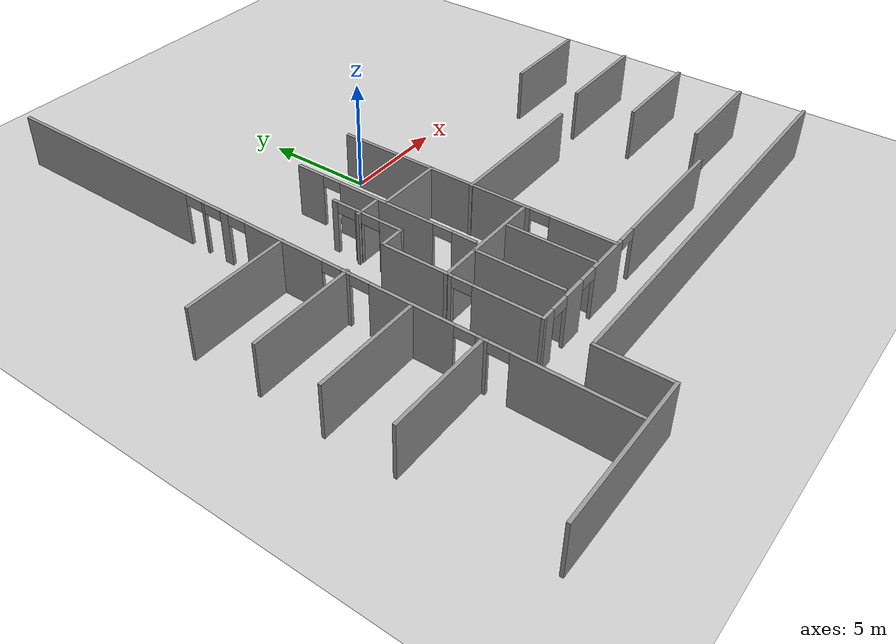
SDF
<sdf version="1.7">
 <world name="default">
  <model name="ground_plane">
   <static>1</static>
   <link name="link">
    <collision name="collision">
     <geometry><plane><normal>0 0 1</normal><size>100 100</size></plane></geometry>
     <surface><friction><ode><mu>100</mu><mu2>50</mu2></ode></friction></surface>
    </collision>
    <visual name="visual">
     <cast_shadows>0</cast_shadows>
     <geometry><plane><normal>0 0 1</normal><size>100 100</size></plane></geometry>
     <material>
      <script><uri>file://media/materials/scripts/gazebo.material</uri><name>Gazebo/Grey</name></script>
     </material>
    </visual>
   </link>
  </model>
  <model name="GGB_1_floor">
   <pose>0.630572 -15.6046 0 0 -0 0</pose>
   <link name="Wall_1">
    <collision name="Wall_1_Collision">
     <geometry><box><size>7 0.15 2.5</size></box></geometry>
     <pose>0 0 1.25 0 -0 0</pose>
    </collision>
    <visual name="Wall_1_Visual">
     <pose>0 0 1.25 0 -0 0</pose>
     <geometry><box><size>7 0.15 2.5</size></box></geometry>
     <material>
      <script><uri>file://media/materials/scripts/gazebo.material</uri><name>Gazebo/Grey</name></script>
      <ambient>1 1 1 1</ambient>
     </material>
     <meta><layer>0</layer></meta>
    </visual>
    <pose>-9.62976 -2.2505 0 0 -0 0</pose>
   </link>
   <link name="Wall_10">
    <pose>-8.20513 13.193 0 0 -0 -1.5708</pose>
    <visual name="Wall_10_Visual_0">
     <pose>-10.2751 0 1.25 0 -0 0</pose>
     <geometry><box><size>10.1998 0.15 2.5</size></box></geometry>
     <material>
      <script><uri>file://media/materials/scripts/gazebo.material</uri><name>Gazebo/Grey</name></script>
      <ambient>1 1 1 1</ambient>
     </material>
     <meta><layer>0</layer></meta>
    </visual>
    <collision name="Wall_10_Collision_0">
     <geometry><box><size>10.1998 0.15 2.5</size></box></geometry>
     <pose>-10.2751 0 1.25 0 -0 0</pose>
    </collision>
    <visual name="Wall_10_Visual_1">
     <pose>-4.20758 0 1.25 0 -0 0</pose>
     <geometry><box><size>0.135255 0.15 2.5</size></box></geometry>
     <material>
      <script><uri>file://media/materials/scripts/gazebo.material</uri><name>Gazebo/Grey</name></script>
      <ambient>1 1 1 1</ambient>
     </material>
     <meta><layer>0</layer></meta>
    </visual>
    <collision name="Wall_10_Collision_1">
     <geometry><box><size>0.135255 0.15 2.5</size></box></geometry>
     <pose>-4.20758 0 1.25 0 -0 0</pose>
    </collision>
    <visual name="Wall_10_Visual_2">
     <pose>-3.02117 0 1.25 0 -0 0</pose>
     <geometry><box><size>0.437563 0.15 2.5</size></box></geometry>
     <material>
      <script><uri>file://media/materials/scripts/gazebo.material</uri><name>Gazebo/Grey</name></script>
      <ambient>1 1 1 1</ambient>
     </material>
     <meta><layer>0</layer></meta>
    </visual>
    <collision name="Wall_10_Collision_2">
     <geometry><box><size>0.437563 0.15 2.5</size></box></geometry>
     <pose>-3.02117 0 1.25 0 -0 0</pose>
    </collision>
    <visual name="Wall_10_Visual_3">
     <pose>0.081968 0 1.25 0 -0 0</pose>
     <geometry><box><size>3.96873 0.15 2.5</size></box></geometry>
     <material>
      <script><uri>file://media/materials/scripts/gazebo.material</uri><name>Gazebo/Grey</name></script>
      <ambient>1 1 1 1</ambient>
     </material>
     <meta><layer>0</layer></meta>
    </visual>
    <collision name="Wall_10_Collision_3">
     <geometry><box><size>3.96873 0.15 2.5</size></box></geometry>
     <pose>0.081968 0 1.25 0 -0 0</pose>
    </collision>
    <visual name="Wall_10_Visual_4">
     <pose>3.18511 0 1.25 0 -0 0</pose>
     <geometry><box><size>0.437563 0.15 2.5</size></box></geometry>
     <material>
      <script><uri>file://media/materials/scripts/gazebo.material</uri><name>Gazebo/Grey</name></script>
      <ambient>1 1 1 1</ambient>
     </material>
     <meta><layer>0</layer></meta>
    </visual>
    <collision name="Wall_10_Collision_4">
     <geometry><box><size>0.437563 0.15 2.5</size></box></geometry>
     <pose>3.18511 0 1.25 0 -0 0</pose>
    </collision>
    <visual name="Wall_10_Visual_5">
     <pose>6.18125 0 1.25 0 -0 0</pose>
     <geometry><box><size>3.75472 0.15 2.5</size></box></geometry>
     <material>
      <script><uri>file://media/materials/scripts/gazebo.material</uri><name>Gazebo/Grey</name></script>
      <ambient>1 1 1 1</ambient>
     </material>
     <meta><layer>0</layer></meta>
    </visual>
    <collision name="Wall_10_Collision_5">
     <geometry><box><size>3.75472 0.15 2.5</size></box></geometry>
     <pose>6.18125 0 1.25 0 -0 0</pose>
    </collision>
    <visual name="Wall_10_Visual_6">
     <pose>9.20415 0 1.25 0 -0 0</pose>
     <geometry><box><size>0.491064 0.15 2.5</size></box></geometry>
     <material>
      <script><uri>file://media/materials/scripts/gazebo.material</uri><name>Gazebo/Grey</name></script>
      <ambient>1 1 1 1</ambient>
     </material>
     <meta><layer>0</layer></meta>
    </visual>
    <collision name="Wall_10_Collision_6">
     <geometry><box><size>0.491064 0.15 2.5</size></box></geometry>
     <pose>9.20415 0 1.25 0 -0 0</pose>
    </collision>
    <visual name="Wall_10_Visual_7">
     <pose>12.8623 0 1.25 0 -0 0</pose>
     <geometry><box><size>5.02532 0.15 2.5</size></box></geometry>
     <material>
      <script><uri>file://media/materials/scripts/gazebo.material</uri><name>Gazebo/Grey</name></script>
      <ambient>1 1 1 1</ambient>
     </material>
     <meta><layer>0</layer></meta>
    </visual>
    <collision name="Wall_10_Collision_7">
     <geometry><box><size>5.02532 0.15 2.5</size></box></geometry>
     <pose>12.8623 0 1.25 0 -0 0</pose>
    </collision>
    <visual name="Wall_10_Visual_8">
     <pose>-4.72521 0 2.25 0 -0 0</pose>
     <geometry><box><size>0.9 0.15 0.5</size></box></geometry>
     <material>
      <script><uri>file://media/materials/scripts/gazebo.material</uri><name>Gazebo/Grey</name></script>
      <ambient>1 1 1 1</ambient>
     </material>
     <meta><layer>0</layer></meta>
    </visual>
    <collision name="Wall_10_Collision_8">
     <geometry><box><size>0.9 0.15 0.5</size></box></geometry>
     <pose>-4.72521 0 2.25 0 -0 0</pose>
    </collision>
    <visual name="Wall_10_Visual_9">
     <pose>-3.68996 0 2.25 0 -0 0</pose>
     <geometry><box><size>0.9 0.15 0.5</size></box></geometry>
     <material>
      <script><uri>file://media/materials/scripts/gazebo.material</uri><name>Gazebo/Grey</name></script>
      <ambient>1 1 1 1</ambient>
     </material>
     <meta><layer>0</layer></meta>
    </visual>
    <collision name="Wall_10_Collision_9">
     <geometry><box><size>0.9 0.15 0.5</size></box></geometry>
     <pose>-3.68996 0 2.25 0 -0 0</pose>
    </collision>
    <visual name="Wall_10_Visual_10">
     <pose>-2.35239 0 2.25 0 -0 0</pose>
     <geometry><box><size>0.9 0.15 0.5</size></box></geometry>
     <material>
      <script><uri>file://media/materials/scripts/gazebo.material</uri><name>Gazebo/Grey</name></script>
      <ambient>1 1 1 1</ambient>
     </material>
     <meta><layer>0</layer></meta>
    </visual>
    <collision name="Wall_10_Collision_10">
     <geometry><box><size>0.9 0.15 0.5</size></box></geometry>
     <pose>-2.35239 0 2.25 0 -0 0</pose>
    </collision>
    <visual name="Wall_10_Visual_11">
     <pose>2.51633 0 2.25 0 -0 0</pose>
     <geometry><box><size>0.9 0.15 0.5</size></box></geometry>
     <material>
      <script><uri>file://media/materials/scripts/gazebo.material</uri><name>Gazebo/Grey</name></script>
      <ambient>1 1 1 1</ambient>
     </material>
     <meta><layer>0</layer></meta>
    </visual>
    <collision name="Wall_10_Collision_11">
     <geometry><box><size>0.9 0.15 0.5</size></box></geometry>
     <pose>2.51633 0 2.25 0 -0 0</pose>
    </collision>
    <visual name="Wall_10_Visual_12">
     <pose>3.85389 0 2.25 0 -0 0</pose>
     <geometry><box><size>0.9 0.15 0.5</size></box></geometry>
     <material>
      <script><uri>file://media/materials/scripts/gazebo.material</uri><name>Gazebo/Grey</name></script>
      <ambient>1 1 1 1</ambient>
     </material>
     <meta><layer>0</layer></meta>
    </visual>
    <collision name="Wall_10_Collision_12">
     <geometry><box><size>0.9 0.15 0.5</size></box></geometry>
     <pose>3.85389 0 2.25 0 -0 0</pose>
    </collision>
    <visual name="Wall_10_Visual_13">
     <pose>8.50861 0 2.25 0 -0 0</pose>
     <geometry><box><size>0.9 0.15 0.5</size></box></geometry>
     <material>
      <script><uri>file://media/materials/scripts/gazebo.material</uri><name>Gazebo/Grey</name></script>
      <ambient>1 1 1 1</ambient>
     </material>
     <meta><layer>0</layer></meta>
    </visual>
    <collision name="Wall_10_Collision_13">
     <geometry><box><size>0.9 0.15 0.5</size></box></geometry>
     <pose>8.50861 0 2.25 0 -0 0</pose>
    </collision>
    <visual name="Wall_10_Visual_14">
     <pose>9.89968 0 2.25 0 -0 0</pose>
     <geometry><box><size>0.9 0.15 0.5</size></box></geometry>
     <material>
      <script><uri>file://media/materials/scripts/gazebo.material</uri><name>Gazebo/Grey</name></script>
      <ambient>1 1 1 1</ambient>
     </material>
     <meta><layer>0</layer></meta>
    </visual>
    <collision name="Wall_10_Collision_14">
     <geometry><box><size>0.9 0.15 0.5</size></box></geometry>
     <pose>9.89968 0 2.25 0 -0 0</pose>
    </collision>
   </link>
   <link name="Wall_19">
    <pose>0.236183 2.85993 0 0 -0 3.14159</pose>
    <visual name="Wall_19_Visual_0">
     <pose>-3.29415 0 1.25 0 -0 0</pose>
     <geometry><box><size>6.16171 0.15 2.5</size></box></geometry>
     <material>
      <script><uri>file://media/materials/scripts/gazebo.material</uri><name>Gazebo/Grey</name></script>
      <ambient>1 1 1 1</ambient>
     </material>
     <meta><layer>0</layer></meta>
    </visual>
    <collision name="Wall_19_Collision_0">
     <geometry><box><size>6.16171 0.15 2.5</size></box></geometry>
     <pose>-3.29415 0 1.25 0 -0 0</pose>
    </collision>
    <visual name="Wall_19_Visual_1">
     <pose>1.73477 0 1.25 0 -0 0</pose>
     <geometry><box><size>2.09614 0.15 2.5</size></box></geometry>
     <material>
      <script><uri>file://media/materials/scripts/gazebo.material</uri><name>Gazebo/Grey</name></script>
      <ambient>1 1 1 1</ambient>
     </material>
     <meta><layer>0</layer></meta>
    </visual>
    <collision name="Wall_19_Collision_1">
     <geometry><box><size>2.09614 0.15 2.5</size></box></geometry>
     <pose>1.73477 0 1.25 0 -0 0</pose>
    </collision>
    <visual name="Wall_19_Visual_2">
     <pose>4.24939 0 1.25 0 -0 0</pose>
     <geometry><box><size>1.13309 0.15 2.5</size></box></geometry>
     <material>
      <script><uri>file://media/materials/scripts/gazebo.material</uri><name>Gazebo/Grey</name></script>
      <ambient>1 1 1 1</ambient>
     </material>
     <meta><layer>0</layer></meta>
    </visual>
    <collision name="Wall_19_Collision_2">
     <geometry><box><size>1.13309 0.15 2.5</size></box></geometry>
     <pose>4.24939 0 1.25 0 -0 0</pose>
    </collision>
    <visual name="Wall_19_Visual_3">
     <pose>6.04547 0 1.25 0 -0 0</pose>
     <geometry><box><size>0.65906 0.15 2.5</size></box></geometry>
     <material>
      <script><uri>file://media/materials/scripts/gazebo.material</uri><name>Gazebo/Grey</name></script>
      <ambient>1 1 1 1</ambient>
     </material>
     <meta><layer>0</layer></meta>
    </visual>
    <collision name="Wall_19_Collision_3">
     <geometry><box><size>0.65906 0.15 2.5</size></box></geometry>
     <pose>6.04547 0 1.25 0 -0 0</pose>
    </collision>
    <visual name="Wall_19_Visual_4">
     <pose>0.236705 0 2.25 0 -0 0</pose>
     <geometry><box><size>0.9 0.15 0.5</size></box></geometry>
     <material>
      <script><uri>file://media/materials/scripts/gazebo.material</uri><name>Gazebo/Grey</name></script>
      <ambient>1 1 1 1</ambient>
     </material>
     <meta><layer>0</layer></meta>
    </visual>
    <collision name="Wall_19_Collision_4">
     <geometry><box><size>0.9 0.15 0.5</size></box></geometry>
     <pose>0.236705 0 2.25 0 -0 0</pose>
    </collision>
    <visual name="Wall_19_Visual_5">
     <pose>3.23284 0 2.25 0 -0 0</pose>
     <geometry><box><size>0.9 0.15 0.5</size></box></geometry>
     <material>
      <script><uri>file://media/materials/scripts/gazebo.material</uri><name>Gazebo/Grey</name></script>
      <ambient>1 1 1 1</ambient>
     </material>
     <meta><layer>0</layer></meta>
    </visual>
    <collision name="Wall_19_Collision_5">
     <geometry><box><size>0.9 0.15 0.5</size></box></geometry>
     <pose>3.23284 0 2.25 0 -0 0</pose>
    </collision>
    <visual name="Wall_19_Visual_6">
     <pose>5.26594 0 2.25 0 -0 0</pose>
     <geometry><box><size>0.9 0.15 0.5</size></box></geometry>
     <material>
      <script><uri>file://media/materials/scripts/gazebo.material</uri><name>Gazebo/Grey</name></script>
      <ambient>1 1 1 1</ambient>
     </material>
     <meta><layer>0</layer></meta>
    </visual>
    <collision name="Wall_19_Collision_6">
     <geometry><box><size>0.9 0.15 0.5</size></box></geometry>
     <pose>5.26594 0 2.25 0 -0 0</pose>
    </collision>
   </link>
   <link name="Wall_2">
    <collision name="Wall_2_Collision">
     <geometry><box><size>3.25 0.15 2.5</size></box></geometry>
     <pose>0 0 1.25 0 -0 0</pose>
    </collision>
    <visual name="Wall_2_Visual">
     <pose>0 0 1.25 0 -0 0</pose>
     <geometry><box><size>3.25 0.15 2.5</size></box></geometry>
     <material>
      <script><uri>file://media/materials/scripts/gazebo.material</uri><name>Gazebo/Grey</name></script>
      <ambient>1 1 1 1</ambient>
     </material>
     <meta><layer>0</layer></meta>
    </visual>
    <pose>-6.20476 -0.700497 0 0 -0 1.5708</pose>
   </link>
   <link name="Wall_20">
    <pose>-6.06382 6.40993 0 0 -0 1.5708</pose>
    <visual name="Wall_20_Visual_0">
     <pose>-2.09772 0 1.25 0 -0 0</pose>
     <geometry><box><size>3.05456 0.15 2.5</size></box></geometry>
     <material>
      <script><uri>file://media/materials/scripts/gazebo.material</uri><name>Gazebo/Grey</name></script>
      <ambient>1 1 1 1</ambient>
     </material>
     <meta><layer>0</layer></meta>
    </visual>
    <collision name="Wall_20_Collision_0">
     <geometry><box><size>3.05456 0.15 2.5</size></box></geometry>
     <pose>-2.09772 0 1.25 0 -0 0</pose>
    </collision>
    <visual name="Wall_20_Visual_1">
     <pose>1.97728 0 1.25 0 -0 0</pose>
     <geometry><box><size>3.29544 0.15 2.5</size></box></geometry>
     <material>
      <script><uri>file://media/materials/scripts/gazebo.material</uri><name>Gazebo/Grey</name></script>
      <ambient>1 1 1 1</ambient>
     </material>
     <meta><layer>0</layer></meta>
    </visual>
    <collision name="Wall_20_Collision_1">
     <geometry><box><size>3.29544 0.15 2.5</size></box></geometry>
     <pose>1.97728 0 1.25 0 -0 0</pose>
    </collision>
    <visual name="Wall_20_Visual_2">
     <pose>-0.120445 0 2.25 0 -0 0</pose>
     <geometry><box><size>0.9 0.15 0.5</size></box></geometry>
     <material>
      <script><uri>file://media/materials/scripts/gazebo.material</uri><name>Gazebo/Grey</name></script>
      <ambient>1 1 1 1</ambient>
     </material>
     <meta><layer>0</layer></meta>
    </visual>
    <collision name="Wall_20_Collision_2">
     <geometry><box><size>0.9 0.15 0.5</size></box></geometry>
     <pose>-0.120445 0 2.25 0 -0 0</pose>
    </collision>
   </link>
   <link name="Wall_21">
    <collision name="Wall_21_Collision">
     <geometry><box><size>1.25 0.15 2.5</size></box></geometry>
     <pose>0 0 1.25 0 -0 0</pose>
    </collision>
    <visual name="Wall_21_Visual">
     <pose>0 0 1.25 0 -0 0</pose>
     <geometry><box><size>1.25 0.15 2.5</size></box></geometry>
     <material>
      <script><uri>file://media/materials/scripts/gazebo.material</uri><name>Gazebo/Grey</name></script>
      <ambient>1 1 1 1</ambient>
     </material>
     <meta><layer>0</layer></meta>
    </visual>
    <pose>-5.51382 9.95993 0 0 -0 0</pose>
   </link>
   <link name="Wall_22">
    <pose>-4.96382 11.6349 0 0 -0 1.5708</pose>
    <visual name="Wall_22_Visual_0">
     <pose>-1.2046 0 1.25 0 -0 0</pose>
     <geometry><box><size>1.0908 0.15 2.5</size></box></geometry>
     <material>
      <script><uri>file://media/materials/scripts/gazebo.material</uri><name>Gazebo/Grey</name></script>
      <ambient>1 1 1 1</ambient>
     </material>
     <meta><layer>0</layer></meta>
    </visual>
    <collision name="Wall_22_Collision_0">
     <geometry><box><size>1.0908 0.15 2.5</size></box></geometry>
     <pose>-1.2046 0 1.25 0 -0 0</pose>
    </collision>
    <visual name="Wall_22_Visual_1">
     <pose>0.406076 0 1.25 0 -0 0</pose>
     <geometry><box><size>0.330556 0.15 2.5</size></box></geometry>
     <material>
      <script><uri>file://media/materials/scripts/gazebo.material</uri><name>Gazebo/Grey</name></script>
      <ambient>1 1 1 1</ambient>
     </material>
     <meta><layer>0</layer></meta>
    </visual>
    <collision name="Wall_22_Collision_1">
     <geometry><box><size>0.330556 0.15 2.5</size></box></geometry>
     <pose>0.406076 0 1.25 0 -0 0</pose>
    </collision>
    <visual name="Wall_22_Visual_2">
     <pose>1.61068 0 1.25 0 -0 0</pose>
     <geometry><box><size>0.278645 0.15 2.5</size></box></geometry>
     <material>
      <script><uri>file://media/materials/scripts/gazebo.material</uri><name>Gazebo/Grey</name></script>
      <ambient>1 1 1 1</ambient>
     </material>
     <meta><layer>0</layer></meta>
    </visual>
    <collision name="Wall_22_Collision_2">
     <geometry><box><size>0.278645 0.15 2.5</size></box></geometry>
     <pose>1.61068 0 1.25 0 -0 0</pose>
    </collision>
    <visual name="Wall_22_Visual_3">
     <pose>-0.209202 0 2.25 0 -0 0</pose>
     <geometry><box><size>0.9 0.15 0.5</size></box></geometry>
     <material>
      <script><uri>file://media/materials/scripts/gazebo.material</uri><name>Gazebo/Grey</name></script>
      <ambient>1 1 1 1</ambient>
     </material>
     <meta><layer>0</layer></meta>
    </visual>
    <collision name="Wall_22_Collision_3">
     <geometry><box><size>0.9 0.15 0.5</size></box></geometry>
     <pose>-0.209202 0 2.25 0 -0 0</pose>
    </collision>
    <visual name="Wall_22_Visual_4">
     <pose>1.02136 0 2.25 0 -0 0</pose>
     <geometry><box><size>0.9 0.15 0.5</size></box></geometry>
     <material>
      <script><uri>file://media/materials/scripts/gazebo.material</uri><name>Gazebo/Grey</name></script>
      <ambient>1 1 1 1</ambient>
     </material>
     <meta><layer>0</layer></meta>
    </visual>
    <collision name="Wall_22_Collision_4">
     <geometry><box><size>0.9 0.15 0.5</size></box></geometry>
     <pose>1.02136 0 2.25 0 -0 0</pose>
    </collision>
   </link>
   <link name="Wall_3">
    <collision name="Wall_3_Collision">
     <geometry><box><size>19.5 0.15 2.5</size></box></geometry>
     <pose>0 0 1.25 0 -0 0</pose>
    </collision>
    <visual name="Wall_3_Visual">
     <pose>0 0 1.25 0 -0 0</pose>
     <geometry><box><size>19.5 0.15 2.5</size></box></geometry>
     <material>
      <script><uri>file://media/materials/scripts/gazebo.material</uri><name>Gazebo/Grey</name></script>
      <ambient>1 1 1 1</ambient>
     </material>
     <meta><layer>0</layer></meta>
    </visual>
    <pose>3.47024 0.849503 0 0 -0 0</pose>
   </link>
   <link name="Wall_33">
    <collision name="Wall_33_Collision">
     <geometry><box><size>9.25 0.15 2.5</size></box></geometry>
     <pose>0 0 1.25 0 -0 0</pose>
    </collision>
    <visual name="Wall_33_Visual">
     <pose>0 0 1.25 0 -0 0</pose>
     <geometry><box><size>9.25 0.15 2.5</size></box></geometry>
     <material>
      <script><uri>file://media/materials/scripts/gazebo.material</uri><name>Gazebo/Grey</name></script>
      <ambient>1 1 1 1</ambient>
     </material>
     <meta><layer>0</layer></meta>
    </visual>
    <pose>-0.749557 11.5304 0 0 -0 -1.5708</pose>
   </link>
   <link name="Wall_34">
    <collision name="Wall_34_Collision">
     <geometry><box><size>5.5 0.15 2.5</size></box></geometry>
     <pose>0 0 1.25 0 -0 0</pose>
    </collision>
    <visual name="Wall_34_Visual">
     <pose>0 0 1.25 0 -0 0</pose>
     <geometry><box><size>5.5 0.15 2.5</size></box></geometry>
     <material>
      <script><uri>file://media/materials/scripts/gazebo.material</uri><name>Gazebo/Grey</name></script>
      <ambient>1 1 1 1</ambient>
     </material>
     <meta><layer>0</layer></meta>
    </visual>
    <pose>-3.42456 6.98045 0 0 -0 3.14159</pose>
   </link>
   <link name="Wall_36">
    <collision name="Wall_36_Collision">
     <geometry><box><size>4 0.15 2.5</size></box></geometry>
     <pose>0 0 1.25 0 -0 0</pose>
    </collision>
    <visual name="Wall_36_Visual">
     <pose>0 0 1.25 0 -0 0</pose>
     <geometry><box><size>4 0.15 2.5</size></box></geometry>
     <material>
      <script><uri>file://media/materials/scripts/gazebo.material</uri><name>Gazebo/Grey</name></script>
      <ambient>1 1 1 1</ambient>
     </material>
     <meta><layer>0</layer></meta>
    </visual>
    <pose>-4.28072 5.00652 0 0 -0 -1.5708</pose>
   </link>
   <link name="Wall_44">
    <collision name="Wall_44_Collision">
     <geometry><box><size>4.5 0.15 2.5</size></box></geometry>
     <pose>0 0 1.25 0 -0 0</pose>
    </collision>
    <visual name="Wall_44_Visual">
     <pose>0 0 1.25 0 -0 0</pose>
     <geometry><box><size>4.5 0.15 2.5</size></box></geometry>
     <material>
      <script><uri>file://media/materials/scripts/gazebo.material</uri><name>Gazebo/Grey</name></script>
      <ambient>1 1 1 1</ambient>
     </material>
     <meta><layer>0</layer></meta>
    </visual>
    <pose>10.7675 13.0368 0 0 -0 0</pose>
   </link>
   <link name="Wall_48">
    <collision name="Wall_48_Collision">
     <geometry><box><size>4.5 0.15 2.5</size></box></geometry>
     <pose>0 0 1.25 0 -0 0</pose>
    </collision>
    <visual name="Wall_48_Visual">
     <pose>0 0 1.25 0 -0 0</pose>
     <geometry><box><size>4.5 0.15 2.5</size></box></geometry>
     <material>
      <script><uri>file://media/materials/scripts/gazebo.material</uri><name>Gazebo/Grey</name></script>
      <ambient>1 1 1 1</ambient>
     </material>
     <meta><layer>0</layer></meta>
    </visual>
    <pose>10.7675 13.0368 0 0 -0 0</pose>
   </link>
   <link name="Wall_54">
    <collision name="Wall_54_Collision">
     <geometry><box><size>4.75 0.15 2.5</size></box></geometry>
     <pose>0 0 1.25 0 -0 0</pose>
    </collision>
    <visual name="Wall_54_Visual">
     <pose>0 0 1.25 0 -0 0</pose>
     <geometry><box><size>4.75 0.15 2.5</size></box></geometry>
     <material>
      <script><uri>file://media/materials/scripts/gazebo.material</uri><name>Gazebo/Grey</name></script>
      <ambient>1 1 1 1</ambient>
     </material>
     <meta><layer>0</layer></meta>
    </visual>
    <pose>10.7984 3.90868 0 0 -0 0</pose>
   </link>
   <link name="Wall_58">
    <collision name="Wall_58_Collision">
     <geometry><box><size>4.75 0.15 2.5</size></box></geometry>
     <pose>0 0 1.25 0 -0 0</pose>
    </collision>
    <visual name="Wall_58_Visual">
     <pose>0 0 1.25 0 -0 0</pose>
     <geometry><box><size>4.75 0.15 2.5</size></box></geometry>
     <material>
      <script><uri>file://media/materials/scripts/gazebo.material</uri><name>Gazebo/Grey</name></script>
      <ambient>1 1 1 1</ambient>
     </material>
     <meta><layer>0</layer></meta>
    </visual>
    <pose>10.8046 9.93536 0 0 -0 0</pose>
   </link>
   <link name="Wall_60">
    <collision name="Wall_60_Collision">
     <geometry><box><size>4.75 0.15 2.5</size></box></geometry>
     <pose>0 0 1.25 0 -0 0</pose>
    </collision>
    <visual name="Wall_60_Visual">
     <pose>0 0 1.25 0 -0 0</pose>
     <geometry><box><size>4.75 0.15 2.5</size></box></geometry>
     <material>
      <script><uri>file://media/materials/scripts/gazebo.material</uri><name>Gazebo/Grey</name></script>
      <ambient>1 1 1 1</ambient>
     </material>
     <meta><layer>0</layer></meta>
    </visual>
    <pose>10.817 7.01135 0 0 -0 0</pose>
   </link>
   <link name="Wall_68">
    <collision name="Wall_68_Collision">
     <geometry><box><size>5 0.15 2.5</size></box></geometry>
     <pose>0 0 1.25 0 -0 0</pose>
    </collision>
    <visual name="Wall_68_Visual">
     <pose>0 0 1.25 0 -0 0</pose>
     <geometry><box><size>5 0.15 2.5</size></box></geometry>
     <material>
      <script><uri>file://media/materials/scripts/gazebo.material</uri><name>Gazebo/Grey</name></script>
      <ambient>1 1 1 1</ambient>
     </material>
     <meta><layer>0</layer></meta>
    </visual>
    <pose>-10.6224 13.1948 0 0 -0 0</pose>
   </link>
   <link name="Wall_70">
    <collision name="Wall_70_Collision">
     <geometry><box><size>5 0.15 2.5</size></box></geometry>
     <pose>0 0 1.25 0 -0 0</pose>
    </collision>
    <visual name="Wall_70_Visual">
     <pose>0 0 1.25 0 -0 0</pose>
     <geometry><box><size>5 0.15 2.5</size></box></geometry>
     <material>
      <script><uri>file://media/materials/scripts/gazebo.material</uri><name>Gazebo/Grey</name></script>
      <ambient>1 1 1 1</ambient>
     </material>
     <meta><layer>0</layer></meta>
    </visual>
    <pose>-10.5612 10.0134 0 0 -0 0</pose>
   </link>
   <link name="Wall_72">
    <collision name="Wall_72_Collision">
     <geometry><box><size>5 0.15 2.5</size></box></geometry>
     <pose>0 0 1.25 0 -0 0</pose>
    </collision>
    <visual name="Wall_72_Visual">
     <pose>0 0 1.25 0 -0 0</pose>
     <geometry><box><size>5 0.15 2.5</size></box></geometry>
     <material>
      <script><uri>file://media/materials/scripts/gazebo.material</uri><name>Gazebo/Grey</name></script>
      <ambient>1 1 1 1</ambient>
     </material>
     <meta><layer>0</layer></meta>
    </visual>
    <pose>-10.6836 6.95441 0 0 -0 0</pose>
   </link>
   <link name="Wall_74">
    <collision name="Wall_74_Collision">
     <geometry><box><size>5 0.15 2.5</size></box></geometry>
     <pose>0 0 1.25 0 -0 0</pose>
    </collision>
    <visual name="Wall_74_Visual">
     <pose>0 0 1.25 0 -0 0</pose>
     <geometry><box><size>5 0.15 2.5</size></box></geometry>
     <material>
      <script><uri>file://media/materials/scripts/gazebo.material</uri><name>Gazebo/Grey</name></script>
      <ambient>1 1 1 1</ambient>
     </material>
     <meta><layer>0</layer></meta>
    </visual>
    <pose>-10.6224 3.95657 0 0 -0 0</pose>
   </link>
   <link name="Wall_76">
    <collision name="Wall_76_Collision">
     <geometry><box><size>7.25 0.15 2.5</size></box></geometry>
     <pose>0 0 1.25 0 -0 0</pose>
    </collision>
    <visual name="Wall_76_Visual">
     <pose>0 0 1.25 0 -0 0</pose>
     <geometry><box><size>7.25 0.15 2.5</size></box></geometry>
     <material>
      <script><uri>file://media/materials/scripts/gazebo.material</uri><name>Gazebo/Grey</name></script>
      <ambient>1 1 1 1</ambient>
     </material>
     <meta><layer>0</layer></meta>
    </visual>
    <pose>2.76976 9.52675 0 0 -0 0</pose>
   </link>
   <link name="Wall_78">
    <collision name="Wall_78_Collision">
     <geometry><box><size>4 0.15 2.5</size></box></geometry>
     <pose>0 0 1.25 0 -0 0</pose>
    </collision>
    <visual name="Wall_78_Visual">
     <pose>0 0 1.25 0 -0 0</pose>
     <geometry><box><size>4 0.15 2.5</size></box></geometry>
     <material>
      <script><uri>file://media/materials/scripts/gazebo.material</uri><name>Gazebo/Grey</name></script>
      <ambient>1 1 1 1</ambient>
     </material>
     <meta><layer>0</layer></meta>
    </visual>
    <pose>-2.20624 4.88774 0 0 -0 -1.5708</pose>
   </link>
   <link name="Wall_81">
    <pose>-0.749557 4.93045 0 0 -0 -1.5708</pose>
    <visual name="Wall_81_Visual_0">
     <pose>-1.95265 0 1.25 0 -0 0</pose>
     <geometry><box><size>0.344701 0.15 2.5</size></box></geometry>
     <material>
      <script><uri>file://media/materials/scripts/gazebo.material</uri><name>Gazebo/Grey</name></script>
      <ambient>1 1 1 1</ambient>
     </material>
     <meta><layer>0</layer></meta>
    </visual>
    <collision name="Wall_81_Collision_0">
     <geometry><box><size>0.344701 0.15 2.5</size></box></geometry>
     <pose>-1.95265 0 1.25 0 -0 0</pose>
    </collision>
    <visual name="Wall_81_Visual_1">
     <pose>0.62235 0 1.25 0 -0 0</pose>
     <geometry><box><size>3.0053 0.15 2.5</size></box></geometry>
     <material>
      <script><uri>file://media/materials/scripts/gazebo.material</uri><name>Gazebo/Grey</name></script>
      <ambient>1 1 1 1</ambient>
     </material>
     <meta><layer>0</layer></meta>
    </visual>
    <collision name="Wall_81_Collision_1">
     <geometry><box><size>3.0053 0.15 2.5</size></box></geometry>
     <pose>0.62235 0 1.25 0 -0 0</pose>
    </collision>
    <visual name="Wall_81_Visual_2">
     <pose>-1.3303 0 2.25 0 -0 0</pose>
     <geometry><box><size>0.9 0.15 0.5</size></box></geometry>
     <material>
      <script><uri>file://media/materials/scripts/gazebo.material</uri><name>Gazebo/Grey</name></script>
      <ambient>1 1 1 1</ambient>
     </material>
     <meta><layer>0</layer></meta>
    </visual>
    <collision name="Wall_81_Collision_2">
     <geometry><box><size>0.9 0.15 0.5</size></box></geometry>
     <pose>-1.3303 0 2.25 0 -0 0</pose>
    </collision>
   </link>
   <link name="Wall_83">
    <collision name="Wall_83_Collision">
     <geometry><box><size>1.25 0.15 2.5</size></box></geometry>
     <pose>0 0 1.25 0 -0 0</pose>
    </collision>
    <visual name="Wall_83_Visual">
     <pose>0 0 1.25 0 -0 0</pose>
     <geometry><box><size>1.25 0.15 2.5</size></box></geometry>
     <material>
      <script><uri>file://media/materials/scripts/gazebo.material</uri><name>Gazebo/Grey</name></script>
      <ambient>1 1 1 1</ambient>
     </material>
     <meta><layer>0</layer></meta>
    </visual>
    <pose>-4.55424 11.9647 0 0 -0 0</pose>
   </link>
   <link name="Wall_85">
    <pose>-3.86224 11.6797 0 0 -0 -1.5708</pose>
    <visual name="Wall_85_Visual_0">
     <pose>-3.8135 0 1.25 0 -0 0</pose>
     <geometry><box><size>1.373 0.15 2.5</size></box></geometry>
     <material>
      <script><uri>file://media/materials/scripts/gazebo.material</uri><name>Gazebo/Grey</name></script>
      <ambient>1 1 1 1</ambient>
     </material>
     <meta><layer>0</layer></meta>
    </visual>
    <collision name="Wall_85_Collision_0">
     <geometry><box><size>1.373 0.15 2.5</size></box></geometry>
     <pose>-3.8135 0 1.25 0 -0 0</pose>
    </collision>
    <visual name="Wall_85_Visual_1">
     <pose>0.128998 0 1.25 0 -0 0</pose>
     <geometry><box><size>4.712 0.15 2.5</size></box></geometry>
     <material>
      <script><uri>file://media/materials/scripts/gazebo.material</uri><name>Gazebo/Grey</name></script>
      <ambient>1 1 1 1</ambient>
     </material>
     <meta><layer>0</layer></meta>
    </visual>
    <collision name="Wall_85_Collision_1">
     <geometry><box><size>4.712 0.15 2.5</size></box></geometry>
     <pose>0.128998 0 1.25 0 -0 0</pose>
    </collision>
    <visual name="Wall_85_Visual_2">
     <pose>3.9425 0 1.25 0 -0 0</pose>
     <geometry><box><size>1.115 0.15 2.5</size></box></geometry>
     <material>
      <script><uri>file://media/materials/scripts/gazebo.material</uri><name>Gazebo/Grey</name></script>
      <ambient>1 1 1 1</ambient>
     </material>
     <meta><layer>0</layer></meta>
    </visual>
    <collision name="Wall_85_Collision_2">
     <geometry><box><size>1.115 0.15 2.5</size></box></geometry>
     <pose>3.9425 0 1.25 0 -0 0</pose>
    </collision>
    <visual name="Wall_85_Visual_3">
     <pose>-2.677 0 2.25 0 -0 0</pose>
     <geometry><box><size>0.9 0.15 0.5</size></box></geometry>
     <material>
      <script><uri>file://media/materials/scripts/gazebo.material</uri><name>Gazebo/Grey</name></script>
      <ambient>1 1 1 1</ambient>
     </material>
     <meta><layer>0</layer></meta>
    </visual>
    <collision name="Wall_85_Collision_3">
     <geometry><box><size>0.9 0.15 0.5</size></box></geometry>
     <pose>-2.677 0 2.25 0 -0 0</pose>
    </collision>
    <visual name="Wall_85_Visual_4">
     <pose>2.935 0 2.25 0 -0 0</pose>
     <geometry><box><size>0.9 0.15 0.5</size></box></geometry>
     <material>
      <script><uri>file://media/materials/scripts/gazebo.material</uri><name>Gazebo/Grey</name></script>
      <ambient>1 1 1 1</ambient>
     </material>
     <meta><layer>0</layer></meta>
    </visual>
    <collision name="Wall_85_Collision_4">
     <geometry><box><size>0.9 0.15 0.5</size></box></geometry>
     <pose>2.935 0 2.25 0 -0 0</pose>
    </collision>
   </link>
   <link name="Wall_87">
    <collision name="Wall_87_Collision">
     <geometry><box><size>3.25 0.15 2.5</size></box></geometry>
     <pose>0 0 1.25 0 -0 0</pose>
    </collision>
    <visual name="Wall_87_Visual">
     <pose>0 0 1.25 0 -0 0</pose>
     <geometry><box><size>3.25 0.15 2.5</size></box></geometry>
     <material>
      <script><uri>file://media/materials/scripts/gazebo.material</uri><name>Gazebo/Grey</name></script>
      <ambient>1 1 1 1</ambient>
     </material>
     <meta><layer>0</layer></meta>
    </visual>
    <pose>-2.31224 11.5967 0 0 -0 0</pose>
   </link>
   <static>1</static>
  </model>
 </world>
</sdf>
